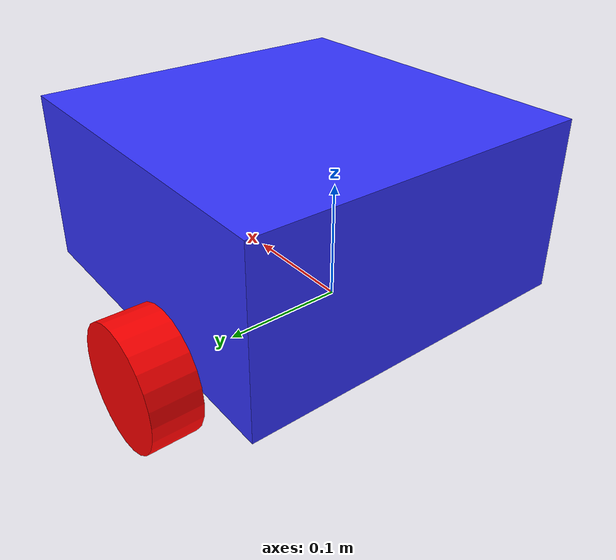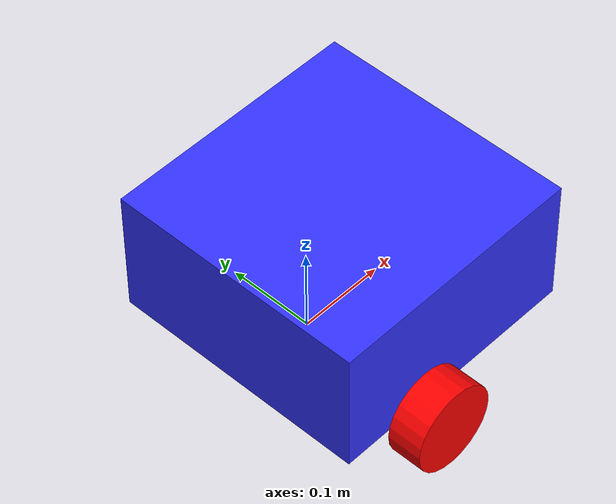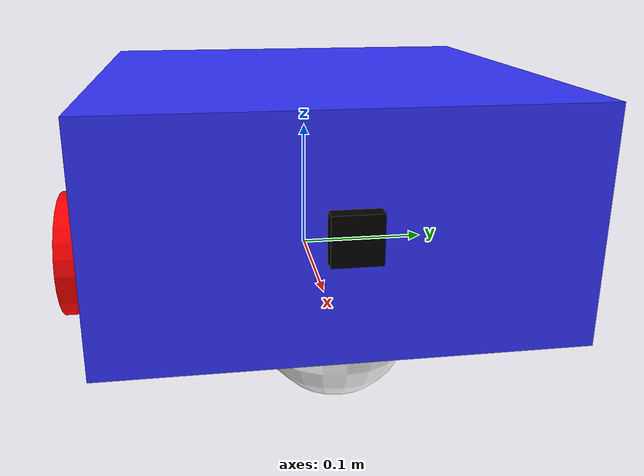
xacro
<?xml version="1.0"?>
<robot xmlns:xacro="http://www.ros.org/wiki/xacro"  name="robot">

    <xacro:arg name="use_ros2_control" default="true"/>
    <xacro:arg name="sensors" default="depth_camera"/>

    <xacro:include filename="robot_core.xacro" />

    <xacro:if value="$(arg use_ros2_control)">
        <xacro:include filename="ros2_control.xacro" />
    </xacro:if>
    <xacro:unless value="$(arg use_ros2_control)">
        <xacro:include filename="gazebo_control.xacro" />
    </xacro:unless>

    <xacro:if value="${'$(arg sensors)' == 'lidar'}">
        <xacro:include filename="lidar.xacro" />
    </xacro:if>

    <xacro:if value="${'$(arg sensors)' == 'lidar_3D' or '$(arg sensors)' == 'lidar_3D_and_Slam'}">
        <xacro:include filename="lidar_3d.xacro" />
        <xacro:include filename="camera.xacro" />
    </xacro:if>

    <xacro:if value="${'$(arg sensors)' == 'depth_camera'}">
        <xacro:include filename="depth_camera.xacro" />
    </xacro:if>

</robot>

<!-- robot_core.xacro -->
<robot xmlns:xacro="http://www.ros.org/wiki/xacro" >

    <xacro:include filename="inertial_macros.xacro"/> <!-- the file contains the inertial properties -->

    <!-- colors definitions-->
    <material name="white">
        <color rgba="1 1 1 1" />
    </material>

    <material name="orange">
        <color rgba="1 0.3 0.1 1"/>
    </material>

    <material name="blue">
        <color rgba="0.2 0.2 1 1"/>
    </material>

    <material name="black">
        <color rgba="0 0 0 1"/>
    </material>

    <material name="red">
        <color rgba="1 0 0 1"/>
    </material>

    <!-- mass values  (0.5, 1.0, 0.5) -->
    <xacro:property name="chassis_mass" value="2.0"/>
    <xacro:property name="wheel_mass" value="1.0"/>
    <xacro:property name="caster_wheel_mass" value="0.7"/>

    <!-- BASE LINK -->
    <link name="base_link"> <!-- main reference for all the other links -->
    </link>

    <!-- BASE_FOOTPRINT LINK -->
    <joint name="base_footprint_joint" type="fixed">
        <parent link="base_link"/>
        <child link="base_footprint"/>
        <origin xyz="0 0 0" rpy="0 0 0"/>
    </joint>

    <link name="base_footprint">
    </link>

    <!-- CHASSIS LINK -->
    <joint name="chassis_joint" type="fixed"> <!-- Chassis == telaio -->
        <parent link="base_link"/>
        <child link="chassis"/>
        <origin xyz="-0.1 0 0"/> <!-- position with reference to the base link -->
    </joint>

    <link name="chassis"> <!-- chassis definition-->
        <visual> <!-- visual aspect -->
            <origin xyz="0.15 0 0.075"/> <!-- position with reference to the link -->
            <geometry>
                <box size="0.3 0.3 0.15"/> <!-- shape with dimension (x,y,z) -->
            </geometry>
            <material name="blue"/>
        </visual>
        <collision> <!-- physic collision-->
            <origin xyz="0.15 0 0.075"/> <!-- same as visual -->
            <geometry>
                <box size="0.3 0.3 0.15"/> <!-- same as visual-->
            </geometry>
        </collision>
        <xacro:inertial_box mass="${chassis_mass}" x="0.3" y="0.3" z="0.15"> <!-- inertial properties -->
            <origin xyz="0.15 0 0.075" rpy="0 0 0"/> <!-- mass center origin -->
        </xacro:inertial_box>
    </link>

    <gazebo reference="chassis"> <!-- gazebo parameters -->
        <material>Gazebo/Blue</material>
    </gazebo>

    <!-- LEFT WHEEL LINK -->
    <joint name="left_wheel_joint" type="continuous">
        <parent link="base_link"/>
        <child link="left_wheel"/>
        <origin xyz="0 0.175 0" rpy="-${pi/2} 0 0" /> <!-- position and orientation of the wheel -->
        <axis xyz="0 0 1"/> <!-- rotation axis -->
    </joint>

    <link name="left_wheel">
        <visual> <!-- visual aspect -->
            <geometry>
                <cylinder radius="0.05" length="0.04"/> <!-- shape (radius, lenght) -->
            </geometry>
            <material name="red"/>
        </visual>
        <collision> <!-- physic collision -->
            <geometry>
                <sphere radius = "0.05"/>
            </geometry>
        </collision>
        <xacro:inertial_cylinder mass="${wheel_mass}" length="0.04" radius="0.05"> <!-- inertial properties-->
            <origin xyz="0 0 0" rpy="0 0 0"/> <!-- mass center origin-->
        </xacro:inertial_cylinder>
    </link>

    <gazebo reference="left_wheel"> <!-- gazebo parameters -->
        <material>Gazebo/Red</material>
    </gazebo>

    <!-- RIGHT WHEEL LINK -->
    <joint name="right_wheel_joint" type="continuous">
        <parent link="base_link"/>
        <child link="right_wheel"/>
        <origin xyz="0 -0.175 0" rpy="${pi/2} 0 0" /> <!-- position and orientation of the wheel -->
        <axis xyz="0 0 -1"/> <!-- rotation axis (opposite of the left wheel) -->
    </joint>

    <link name="right_wheel">
        <visual> <!-- visual aspect -->
            <geometry>
                <cylinder radius="0.05" length="0.04"/> <!-- shape (radius, lenght)-->
            </geometry>
            <material name="red"/>
        </visual>
        <collision> <!-- physic collision -->
            <geometry>
                <sphere radius = "0.05"/>
            </geometry>
        </collision>
        <xacro:inertial_cylinder mass="${wheel_mass}" length="0.04" radius="0.05"> <!-- inertial properties-->
            <origin xyz="0 0 0" rpy="0 0 0"/> <!-- mass center origin -->
        </xacro:inertial_cylinder>
    </link>

    <gazebo reference="right_wheel"> <!-- gazebo parameters -->
        <material>Gazebo/Red</material>
    </gazebo>

    <!-- CASTER WHEEL LINK -->
    <joint name="caster_wheel_joint" type="fixed">
        <parent link="chassis"/>
        <child link="caster_wheel"/>
        <origin xyz="0.24 0 0"/>
    </joint>

    <link name="caster_wheel">
        <visual> <!-- visual aspect -->
            <geometry>
                <sphere radius="0.05"/> <!-- sphere (radius)-->
            </geometry>
            <material name="white"/>
        </visual>
        <collision> <!-- physic collision -->
            <geometry>
                <sphere radius="0.05"/> <!-- same as visual -->
            </geometry>
        </collision>
        <xacro:inertial_sphere mass="${caster_wheel_mass}" radius="0.05"> <!-- inertial properties -->
            <origin xyz="0 0 0" rpy="0 0 0"/> <!-- mass center origin -->
        </xacro:inertial_sphere>
    </link>

    <gazebo reference="caster_wheel"> <!-- gazebo params -->
        <material>Gazebo/White</material>
        <mu1 value="0.001"/> <!-- friction on X axis -->
        <mu2 value="0.001"/> <!-- friction on Y axis -->
    </gazebo>

</robot>

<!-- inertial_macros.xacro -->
<robot xmlns:xacro="http://www.ros.org/wiki/xacro" >

    <!-- This file defines some macro Xacro to compute the inertial properties of used shapes -->

    <!-- sphere macros -->
    <xacro:macro name="inertial_sphere" params="mass radius *origin">
        <inertial>
            <xacro:insert_block name="origin"/>
            <mass value="${mass}" />
            <inertia ixx="${(2/5) * mass * (radius*radius)}" ixy="0.0" ixz="0.0"
                    iyy="${(2/5) * mass * (radius*radius)}" iyz="0.0"
                    izz="${(2/5) * mass * (radius*radius)}" /> <!-- inertia moments -->
        </inertial>
    </xacro:macro>

    <!-- box macros -->
    <xacro:macro name="inertial_box" params="mass x y z *origin">
        <inertial>
            <xacro:insert_block name="origin"/>
            <mass value="${mass}" />
            <inertia ixx="${(1/12) * mass * (y*y+z*z)}" ixy="0.0" ixz="0.0"
                    iyy="${(1/12) * mass * (x*x+z*z)}" iyz="0.0"
                    izz="${(1/12) * mass * (x*x+y*y)}" />
        </inertial>
    </xacro:macro>

    <!-- cylinder macros -->
    <xacro:macro name="inertial_cylinder" params="mass length radius *origin">
        <inertial>
            <xacro:insert_block name="origin"/>
            <mass value="${mass}" />
            <inertia ixx="${(1/12) * mass * (3*radius*radius + length*length)}" ixy="0.0" ixz="0.0"
                    iyy="${(1/12) * mass * (3*radius*radius + length*length)}" iyz="0.0"
                    izz="${(1/2) * mass * (radius*radius)}" />
        </inertial>
    </xacro:macro>

</robot>

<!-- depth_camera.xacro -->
<robot xmlns:xacro="http://www.ros.org/wiki/xacro" >

    <joint name="camera_joint" type="fixed">
        <parent link="chassis"/>
        <child link="camera_link"/>
        <origin xyz="0.305 0 0.08" rpy="0 0 0"/> <!-- position and orientation with respect to the chassis-->
    </joint>

    <link name="camera_link">
        <visual> <!-- visual aspect-->
            <geometry>
                <box size="0.010 0.03 0.03"/> <!-- box with size (x,y,z) -->
            </geometry>
            <material name="black"/>
        </visual>
    </link>

    <joint name="camera_optical_joint" type="fixed"> <!-- optical frame -->
        <parent link="camera_link"/>
        <child link="camera_link_optical"/>
        <origin xyz="0 0 0" rpy="${-pi/2} 0 ${-pi/2}"/> <!-- rotation needed to allign the frame to Ros -->
    </joint>

    <link name="camera_link_optical"></link> <!-- empty link for the optical frame -->

    <gazebo reference="camera_link"> <!-- gazebo definition of the camera -->
        <material>Gazebo/Black</material>

        <sensor name="camera" type="depth">
            <pose> 0 0 0 0 0 0 </pose> <!-- sensor position -->
            <visualize>true</visualize> <!-- set false to not see the camera visualization on gazebo -->
            <update_rate>10</update_rate> <!-- (Hz) -->
            <camera>
                <horizontal_fov>1.089</horizontal_fov>
                <image>
                    <format>B8G8R8</format>
                    <width>640</width> <!-- horizontal resolution -->
                    <height>480</height> <!-- vertical resolution -->
                </image>
                <clip>
                    <near>0.05</near> <!-- min visualizable distance  -->
                    <far>8.0</far> <!-- max visualizable distance -->
                </clip>
            </camera>
            <plugin name="camera_controller" filename="libgazebo_ros_camera.so"> <!-- Ros plugin that publish the camera data-->
                <frame_name>camera_link_optical</frame_name> <!-- reference frame for the camera data -->
                <min_depth>0.1</min_depth> <!-- min depth for the sensor -->
                <max_depth>100.0</max_depth> <!-- max depth for the sensor -->
            </plugin>
        </sensor>
    </gazebo>

</robot>
